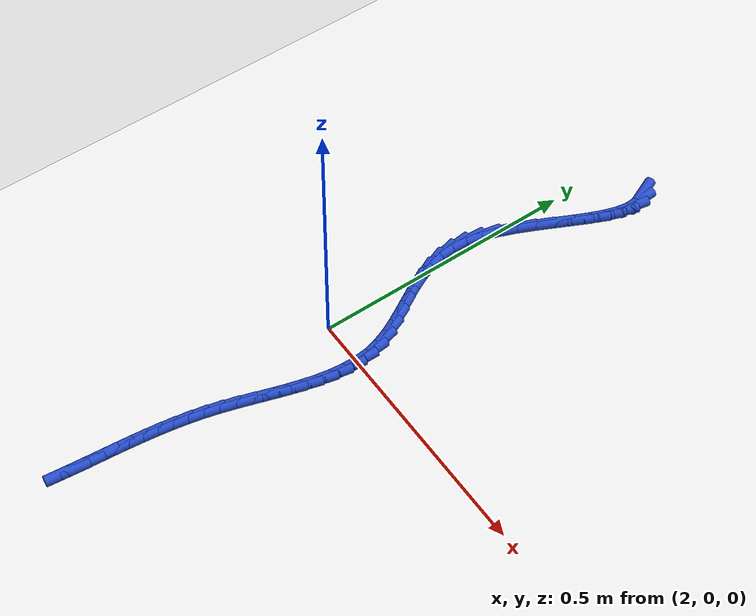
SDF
<sdf version="1.6">
 <world name="default">
  <model name="ground_plane">
   <static>1</static>
   <link name="link">
    <collision name="collision">
     <geometry><plane><normal>0 0 1</normal><size>100 100</size></plane></geometry>
     <surface><friction><ode><mu>100</mu><mu2>50</mu2></ode></friction></surface>
    </collision>
    <visual name="visual">
     <cast_shadows>0</cast_shadows>
     <geometry><plane><normal>0 0 1</normal><size>100 100</size></plane></geometry>
     <material>
      <script><uri>file://media/materials/scripts/gazebo.material</uri><name>Gazebo/WhiteGlow</name></script>
     </material>
    </visual>
   </link>
  </model>
  <model name="line">
   <link name="link_108">
    <pose>2.088530671236772 0.6298471862622399 0.01 0 1.57 -1.1535494552627963</pose>
    <collision name="collision">
     <geometry><cylinder><radius>0.01</radius><length>0.08</length></cylinder></geometry>
    </collision>
    <visual name="visual">
     <material>
      <script><name>Gazebo/Blue</name><uri>file://media/materials/scripts/gazebo.material</uri></script>
     </material>
     <geometry><cylinder><radius>0.01</radius><length>0.08</length></cylinder></geometry>
    </visual>
   </link>
   <link name="link_109">
    <pose>2.095866203141304 0.6132986744674297 0.01 0 1.57 -1.5086963709344243</pose>
    <collision name="collision">
     <geometry><cylinder><radius>0.01</radius><length>0.08</length></cylinder></geometry>
    </collision>
    <visual name="visual">
     <material>
      <script><name>Gazebo/Blue</name><uri>file://media/materials/scripts/gazebo.material</uri></script>
     </material>
     <geometry><cylinder><radius>0.01</radius><length>0.08</length></cylinder></geometry>
    </visual>
   </link>
   <link name="link_110">
    <pose>2.097097984483469 0.5934887164381072 0.01 0 1.57 1.4005457437463467</pose>
    <collision name="collision">
     <geometry><cylinder><radius>0.01</radius><length>0.08</length></cylinder></geometry>
    </collision>
    <visual name="visual">
     <material>
      <script><name>Gazebo/Blue</name><uri>file://media/materials/scripts/gazebo.material</uri></script>
     </material>
     <geometry><cylinder><radius>0.01</radius><length>0.08</length></cylinder></geometry>
    </visual>
   </link>
   <link name="link_111">
    <pose>2.093200612877301 0.5708183494552752 0.01 0 1.57 1.2607176355991938</pose>
    <collision name="collision">
     <geometry><cylinder><radius>0.01</radius><length>0.08</length></cylinder></geometry>
    </collision>
    <visual name="visual">
     <material>
      <script><name>Gazebo/Blue</name><uri>file://media/materials/scripts/gazebo.material</uri></script>
     </material>
     <geometry><cylinder><radius>0.01</radius><length>0.08</length></cylinder></geometry>
    </visual>
   </link>
   <link name="link_112">
    <pose>2.0851486859368333 0.545688610799935 0.01 0 1.57 1.1790326558956479</pose>
    <collision name="collision">
     <geometry><cylinder><radius>0.01</radius><length>0.08</length></cylinder></geometry>
    </collision>
    <visual name="visual">
     <material>
      <script><name>Gazebo/Blue</name><uri>file://media/materials/scripts/gazebo.material</uri></script>
     </material>
     <geometry><cylinder><radius>0.01</radius><length>0.08</length></cylinder></geometry>
    </visual>
   </link>
   <link name="link_113">
    <pose>2.0739168012760993 0.5185005377530887 0.01 0 1.57 1.1348505632659704</pose>
    <collision name="collision">
     <geometry><cylinder><radius>0.01</radius><length>0.08</length></cylinder></geometry>
    </collision>
    <visual name="visual">
     <material>
      <script><name>Gazebo/Blue</name><uri>file://media/materials/scripts/gazebo.material</uri></script>
     </material>
     <geometry><cylinder><radius>0.01</radius><length>0.08</length></cylinder></geometry>
    </visual>
   </link>
   <link name="link_114">
    <pose>2.060479556509134 0.4896551675957383 0.01 0 1.57 1.117374119509343</pose>
    <collision name="collision">
     <geometry><cylinder><radius>0.01</radius><length>0.08</length></cylinder></geometry>
    </collision>
    <visual name="visual">
     <material>
      <script><name>Gazebo/Blue</name><uri>file://media/materials/scripts/gazebo.material</uri></script>
     </material>
     <geometry><cylinder><radius>0.01</radius><length>0.08</length></cylinder></geometry>
    </visual>
   </link>
   <link name="link_115">
    <pose>2.045811549249971 0.4595535376088851 0.01 0 1.57 1.1215743032904808</pose>
    <collision name="collision">
     <geometry><cylinder><radius>0.01</radius><length>0.08</length></cylinder></geometry>
    </collision>
    <visual name="visual">
     <material>
      <script><name>Gazebo/Blue</name><uri>file://media/materials/scripts/gazebo.material</uri></script>
     </material>
     <geometry><cylinder><radius>0.01</radius><length>0.08</length></cylinder></geometry>
    </visual>
   </link>
   <link name="link_116">
    <pose>2.030887377112643 0.4285966850735319 0.01 0 1.57 1.1460702967075056</pose>
    <collision name="collision">
     <geometry><cylinder><radius>0.01</radius><length>0.08</length></cylinder></geometry>
    </collision>
    <visual name="visual">
     <material>
      <script><name>Gazebo/Blue</name><uri>file://media/materials/scripts/gazebo.material</uri></script>
     </material>
     <geometry><cylinder><radius>0.01</radius><length>0.08</length></cylinder></geometry>
    </visual>
   </link>
   <link name="link_117">
    <pose>2.0166816377111862 0.39718564727068023 0.01 0 1.57 1.1922906798317183</pose>
    <collision name="collision">
     <geometry><cylinder><radius>0.01</radius><length>0.08</length></cylinder></geometry>
    </collision>
    <visual name="visual">
     <material>
      <script><name>Gazebo/Blue</name><uri>file://media/materials/scripts/gazebo.material</uri></script>
     </material>
     <geometry><cylinder><radius>0.01</radius><length>0.08</length></cylinder></geometry>
    </visual>
   </link>
   <link name="link_118">
    <pose>2.0041689286596323 0.36572146148133167 0.01 0 1.57 1.2643657521343818</pose>
    <collision name="collision">
     <geometry><cylinder><radius>0.01</radius><length>0.08</length></cylinder></geometry>
    </collision>
    <visual name="visual">
     <material>
      <script><name>Gazebo/Blue</name><uri>file://media/materials/scripts/gazebo.material</uri></script>
     </material>
     <geometry><cylinder><radius>0.01</radius><length>0.08</length></cylinder></geometry>
    </visual>
   </link>
   <link name="link_119">
    <pose>1.9943238475720158 0.3346051649864888 0.01 0 1.57 1.3693074663694043</pose>
    <collision name="collision">
     <geometry><cylinder><radius>0.01</radius><length>0.08</length></cylinder></geometry>
    </collision>
    <visual name="visual">
     <material>
      <script><name>Gazebo/Blue</name><uri>file://media/materials/scripts/gazebo.material</uri></script>
     </material>
     <geometry><cylinder><radius>0.01</radius><length>0.08</length></cylinder></geometry>
    </visual>
   </link>
   <link name="link_120">
    <pose>1.988120992062371 0.30423779506715315 0.01 0 1.57 1.5160479016386545</pose>
    <collision name="collision">
     <geometry><cylinder><radius>0.01</radius><length>0.08</length></cylinder></geometry>
    </collision>
    <visual name="visual">
     <material>
      <script><name>Gazebo/Blue</name><uri>file://media/materials/scripts/gazebo.material</uri></script>
     </material>
     <geometry><cylinder><radius>0.01</radius><length>0.08</length></cylinder></geometry>
    </visual>
   </link>
   <link name="link_121">
    <pose>1.9865195143891046 0.27501545187732146 0.01 0 1.57 -1.4560521221659186</pose>
    <collision name="collision">
     <geometry><cylinder><radius>0.01</radius><length>0.08</length></cylinder></geometry>
    </collision>
    <visual name="visual">
     <material>
      <script><name>Gazebo/Blue</name><uri>file://media/materials/scripts/gazebo.material</uri></script>
     </material>
     <geometry><cylinder><radius>0.01</radius><length>0.08</length></cylinder></geometry>
    </visual>
   </link>
   <link name="link_122">
    <pose>1.9897371026363526 0.24709722563177655 0.01 0 1.57 -1.308241435245321</pose>
    <collision name="collision">
     <geometry><cylinder><radius>0.01</radius><length>0.08</length></cylinder></geometry>
    </collision>
    <visual name="visual">
     <material>
      <script><name>Gazebo/Blue</name><uri>file://media/materials/scripts/gazebo.material</uri></script>
     </material>
     <geometry><cylinder><radius>0.01</radius><length>0.08</length></cylinder></geometry>
    </visual>
   </link>
   <link name="link_123">
    <pose>1.9969376596604576 0.22030536279552848 0.01 0 1.57 -1.1929749097223121</pose>
    <collision name="collision">
     <geometry><cylinder><radius>0.01</radius><length>0.08</length></cylinder></geometry>
    </collision>
    <visual name="visual">
     <material>
      <script><name>Gazebo/Blue</name><uri>file://media/materials/scripts/gazebo.material</uri></script>
     </material>
     <geometry><cylinder><radius>0.01</radius><length>0.08</length></cylinder></geometry>
    </visual>
   </link>
   <link name="link_124">
    <pose>2.0072047491188494 0.1944364293094152 0.01 0 1.57 -1.1121723821426321</pose>
    <collision name="collision">
     <geometry><cylinder><radius>0.01</radius><length>0.08</length></cylinder></geometry>
    </collision>
    <visual name="visual">
     <material>
      <script><name>Gazebo/Blue</name><uri>file://media/materials/scripts/gazebo.material</uri></script>
     </material>
     <geometry><cylinder><radius>0.01</radius><length>0.08</length></cylinder></geometry>
    </visual>
   </link>
   <link name="link_125">
    <pose>2.0196219346689572 0.1692869911142734 0.01 0 1.57 -1.0647644617511234</pose>
    <collision name="collision">
     <geometry><cylinder><radius>0.01</radius><length>0.08</length></cylinder></geometry>
    </collision>
    <visual name="visual">
     <material>
      <script><name>Gazebo/Blue</name><uri>file://media/materials/scripts/gazebo.material</uri></script>
     </material>
     <geometry><cylinder><radius>0.01</radius><length>0.08</length></cylinder></geometry>
    </visual>
   </link>
   <link name="link_126">
    <pose>2.03327277996821 0.14465361415093989 0.01 0 1.57 -1.049467803209843</pose>
    <collision name="collision">
     <geometry><cylinder><radius>0.01</radius><length>0.08</length></cylinder></geometry>
    </collision>
    <visual name="visual">
     <material>
      <script><name>Gazebo/Blue</name><uri>file://media/materials/scripts/gazebo.material</uri></script>
     </material>
     <geometry><cylinder><radius>0.01</radius><length>0.08</length></cylinder></geometry>
    </visual>
   </link>
   <link name="link_127">
    <pose>2.047240848674039 0.12033286436025259 0.01 0 1.57 -1.0662898653865351</pose>
    <collision name="collision">
     <geometry><cylinder><radius>0.01</radius><length>0.08</length></cylinder></geometry>
    </collision>
    <visual name="visual">
     <material>
      <script><name>Gazebo/Blue</name><uri>file://media/materials/scripts/gazebo.material</uri></script>
     </material>
     <geometry><cylinder><radius>0.01</radius><length>0.08</length></cylinder></geometry>
    </visual>
   </link>
   <link name="link_128">
    <pose>2.0606097044438707 0.09612130768304822 0.01 0 1.57 -1.1170613444979636</pose>
    <collision name="collision">
     <geometry><cylinder><radius>0.01</radius><length>0.08</length></cylinder></geometry>
    </collision>
    <visual name="visual">
     <material>
      <script><name>Gazebo/Blue</name><uri>file://media/materials/scripts/gazebo.material</uri></script>
     </material>
     <geometry><cylinder><radius>0.01</radius><length>0.08</length></cylinder></geometry>
    </visual>
   </link>
   <link name="link_129">
    <pose>2.072462910935138 0.071815510060164 0.01 0 1.57 -1.2051016872098912</pose>
    <collision name="collision">
     <geometry><cylinder><radius>0.01</radius><length>0.08</length></cylinder></geometry>
    </collision>
    <visual name="visual">
     <material>
      <script><name>Gazebo/Blue</name><uri>file://media/materials/scripts/gazebo.material</uri></script>
     </material>
     <geometry><cylinder><radius>0.01</radius><length>0.08</length></cylinder></geometry>
    </visual>
   </link>
   <link name="link_130">
    <pose>2.0818840318052674 0.04721203743243704 0.01 0 1.57 -1.33162461556266</pose>
    <collision name="collision">
     <geometry><cylinder><radius>0.01</radius><length>0.08</length></cylinder></geometry>
    </collision>
    <visual name="visual">
     <material>
      <script><name>Gazebo/Blue</name><uri>file://media/materials/scripts/gazebo.material</uri></script>
     </material>
     <geometry><cylinder><radius>0.01</radius><length>0.08</length></cylinder></geometry>
    </visual>
   </link>
   <link name="link_131">
    <pose>2.088003263288894 0.022116659862207972 0.01 0 1.57 -1.466753814835802</pose>
    <collision name="collision">
     <geometry><cylinder><radius>0.01</radius><length>0.08</length></cylinder></geometry>
    </collision>
    <visual name="visual">
     <material>
      <script><name>Gazebo/Blue</name><uri>file://media/materials/scripts/gazebo.material</uri></script>
     </material>
     <geometry><cylinder><radius>0.01</radius><length>0.08</length></cylinder></geometry>
    </visual>
   </link>
   <link name="link_132">
    <pose>2.0906803221500603 -0.0035208632143480943 0.01 0 1.57 1.5582715600648647</pose>
    <collision name="collision">
     <geometry><cylinder><radius>0.01</radius><length>0.08</length></cylinder></geometry>
    </collision>
    <visual name="visual">
     <material>
      <script><name>Gazebo/Blue</name><uri>file://media/materials/scripts/gazebo.material</uri></script>
     </material>
     <geometry><cylinder><radius>0.01</radius><length>0.08</length></cylinder></geometry>
    </visual>
   </link>
   <link name="link_133">
    <pose>2.090353211121199 -0.029636632962466845 0.01 0 1.57 1.4627478954460775</pose>
    <collision name="collision">
     <geometry><cylinder><radius>0.01</radius><length>0.08</length></cylinder></geometry>
    </collision>
    <visual name="visual">
     <material>
      <script><name>Gazebo/Blue</name><uri>file://media/materials/scripts/gazebo.material</uri></script>
     </material>
     <geometry><cylinder><radius>0.01</radius><length>0.08</length></cylinder></geometry>
    </visual>
   </link>
   <link name="link_134">
    <pose>2.0874758059297793 -0.056163617609343346 0.01 0 1.57 1.387768934010715</pose>
    <collision name="collision">
     <geometry><cylinder><radius>0.01</radius><length>0.08</length></cylinder></geometry>
    </collision>
    <visual name="visual">
     <material>
      <script><name>Gazebo/Blue</name><uri>file://media/materials/scripts/gazebo.material</uri></script>
     </material>
     <geometry><cylinder><radius>0.01</radius><length>0.08</length></cylinder></geometry>
    </visual>
   </link>
   <link name="link_135">
    <pose>2.0825019823032727 -0.0830347853821749 0.01 0 1.57 1.3317446483944952</pose>
    <collision name="collision">
     <geometry><cylinder><radius>0.01</radius><length>0.08</length></cylinder></geometry>
    </collision>
    <visual name="visual">
     <material>
      <script><name>Gazebo/Blue</name><uri>file://media/materials/scripts/gazebo.material</uri></script>
     </material>
     <geometry><cylinder><radius>0.01</radius><length>0.08</length></cylinder></geometry>
    </visual>
   </link>
   <link name="link_136">
    <pose>2.075885615969148 -0.11018310450815814 0.01 0 1.57 1.292890857382724</pose>
    <collision name="collision">
     <geometry><cylinder><radius>0.01</radius><length>0.08</length></cylinder></geometry>
    </collision>
    <visual name="visual">
     <material>
      <script><name>Gazebo/Blue</name><uri>file://media/materials/scripts/gazebo.material</uri></script>
     </material>
     <geometry><cylinder><radius>0.01</radius><length>0.08</length></cylinder></geometry>
    </visual>
   </link>
   <link name="link_137">
    <pose>2.068080582654876 -0.1375415432144896 0.01 0 1.57 1.2697146407177258</pose>
    <collision name="collision">
     <geometry><cylinder><radius>0.01</radius><length>0.08</length></cylinder></geometry>
    </collision>
    <visual name="visual">
     <material>
      <script><name>Gazebo/Blue</name><uri>file://media/materials/scripts/gazebo.material</uri></script>
     </material>
     <geometry><cylinder><radius>0.01</radius><length>0.08</length></cylinder></geometry>
    </visual>
   </link>
   <link name="link_138">
    <pose>2.0595407580879264 -0.1650430697283658 0.01 0 1.57 1.2612277998145538</pose>
    <collision name="collision">
     <geometry><cylinder><radius>0.01</radius><length>0.08</length></cylinder></geometry>
    </collision>
    <visual name="visual">
     <material>
      <script><name>Gazebo/Blue</name><uri>file://media/materials/scripts/gazebo.material</uri></script>
     </material>
     <geometry><cylinder><radius>0.01</radius><length>0.08</length></cylinder></geometry>
    </visual>
   </link>
   <link name="link_139">
    <pose>2.05072001799577 -0.19262065227698338 0.01 0 1.57 1.2670211939470757</pose>
    <collision name="collision">
     <geometry><cylinder><radius>0.01</radius><length>0.08</length></cylinder></geometry>
    </collision>
    <visual name="visual">
     <material>
      <script><name>Gazebo/Blue</name><uri>file://media/materials/scripts/gazebo.material</uri></script>
     </material>
     <geometry><cylinder><radius>0.01</radius><length>0.08</length></cylinder></geometry>
    </visual>
   </link>
   <link name="link_140">
    <pose>2.0420722381058756 -0.22020725908753974 0.01 0 1.57 1.2872777909090192</pose>
    <collision name="collision">
     <geometry><cylinder><radius>0.01</radius><length>0.08</length></cylinder></geometry>
    </collision>
    <visual name="visual">
     <material>
      <script><name>Gazebo/Blue</name><uri>file://media/materials/scripts/gazebo.material</uri></script>
     </material>
     <geometry><cylinder><radius>0.01</radius><length>0.08</length></cylinder></geometry>
    </visual>
   </link>
   <link name="link_141">
    <pose>2.034051294145714 -0.24773585838722975 0.01 0 1.57 1.3217633104811566</pose>
    <collision name="collision">
     <geometry><cylinder><radius>0.01</radius><length>0.08</length></cylinder></geometry>
    </collision>
    <visual name="visual">
     <material>
      <script><name>Gazebo/Blue</name><uri>file://media/materials/scripts/gazebo.material</uri></script>
     </material>
     <geometry><cylinder><radius>0.01</radius><length>0.08</length></cylinder></geometry>
    </visual>
   </link>
   <link name="link_142">
    <pose>2.0270811594337395 -0.275143651759333 0.01 0 1.57 1.3596173518885084</pose>
    <collision name="collision">
     <geometry><cylinder><radius>0.01</radius><length>0.08</length></cylinder></geometry>
    </collision>
    <visual name="visual">
     <material>
      <script><name>Gazebo/Blue</name><uri>file://media/materials/scripts/gazebo.material</uri></script>
     </material>
     <geometry><cylinder><radius>0.01</radius><length>0.08</length></cylinder></geometry>
    </visual>
   </link>
   <link name="link_143">
    <pose>2.0212342978314357 -0.3024176048277693 0.01 0 1.57 1.3930219907149048</pose>
    <collision name="collision">
     <geometry><cylinder><radius>0.01</radius><length>0.08</length></cylinder></geometry>
    </collision>
    <visual name="visual">
     <material>
      <script><name>Gazebo/Blue</name><uri>file://media/materials/scripts/gazebo.material</uri></script>
     </material>
     <geometry><cylinder><radius>0.01</radius><length>0.08</length></cylinder></geometry>
    </visual>
   </link>
   <link name="link_144">
    <pose>2.0163545301074985 -0.3295770527699266 0.01 0 1.57 1.4214357884696307</pose>
    <collision name="collision">
     <geometry><cylinder><radius>0.01</radius><length>0.08</length></cylinder></geometry>
    </collision>
    <visual name="visual">
     <material>
      <script><name>Gazebo/Blue</name><uri>file://media/materials/scripts/gazebo.material</uri></script>
     </material>
     <geometry><cylinder><radius>0.01</radius><length>0.08</length></cylinder></geometry>
    </visual>
   </link>
   <link name="link_145">
    <pose>2.012281781740606 -0.3566418822287851 0.01 0 1.57 1.4445432852288151</pose>
    <collision name="collision">
     <geometry><cylinder><radius>0.01</radius><length>0.08</length></cylinder></geometry>
    </collision>
    <visual name="visual">
     <material>
      <script><name>Gazebo/Blue</name><uri>file://media/materials/scripts/gazebo.material</uri></script>
     </material>
     <geometry><cylinder><radius>0.01</radius><length>0.08</length></cylinder></geometry>
    </visual>
   </link>
   <link name="link_146">
    <pose>2.0088559782094353 -0.38363197984732456 0.01 0 1.57 1.462115223726965</pose>
    <collision name="collision">
     <geometry><cylinder><radius>0.01</radius><length>0.08</length></cylinder></geometry>
    </collision>
    <visual name="visual">
     <material>
      <script><name>Gazebo/Blue</name><uri>file://media/materials/scripts/gazebo.material</uri></script>
     </material>
     <geometry><cylinder><radius>0.01</radius><length>0.08</length></cylinder></geometry>
    </visual>
   </link>
   <link name="link_147">
    <pose>2.005917044992663 -0.41056723226852504 0.01 0 1.57 1.4739953998580437</pose>
    <collision name="collision">
     <geometry><cylinder><radius>0.01</radius><length>0.08</length></cylinder></geometry>
    </collision>
    <visual name="visual">
     <material>
      <script><name>Gazebo/Blue</name><uri>file://media/materials/scripts/gazebo.material</uri></script>
     </material>
     <geometry><cylinder><radius>0.01</radius><length>0.08</length></cylinder></geometry>
    </visual>
   </link>
   <link name="link_148">
    <pose>2.0033049075689675 -0.4374675261353665 0.01 0 1.57 1.4800882955928145</pose>
    <collision name="collision">
     <geometry><cylinder><radius>0.01</radius><length>0.08</length></cylinder></geometry>
    </collision>
    <visual name="visual">
     <material>
      <script><name>Gazebo/Blue</name><uri>file://media/materials/scripts/gazebo.material</uri></script>
     </material>
     <geometry><cylinder><radius>0.01</radius><length>0.08</length></cylinder></geometry>
    </visual>
   </link>
   <link name="link_149">
    <pose>2.0008594914170246 -0.46435274809082977 0.01 0 1.57 1.480349608778248</pose>
    <collision name="collision">
     <geometry><cylinder><radius>0.01</radius><length>0.08</length></cylinder></geometry>
    </collision>
    <visual name="visual">
     <material>
      <script><name>Gazebo/Blue</name><uri>file://media/materials/scripts/gazebo.material</uri></script>
     </material>
     <geometry><cylinder><radius>0.01</radius><length>0.08</length></cylinder></geometry>
    </visual>
   </link>
   <link name="link_150">
    <pose>1.998420722015513 -0.4912427847778933 0.01 0 1.57 1.47478103215782</pose>
    <collision name="collision">
     <geometry><cylinder><radius>0.01</radius><length>0.08</length></cylinder></geometry>
    </collision>
    <visual name="visual">
     <material>
      <script><name>Gazebo/Blue</name><uri>file://media/materials/scripts/gazebo.material</uri></script>
     </material>
     <geometry><cylinder><radius>0.01</radius><length>0.08</length></cylinder></geometry>
    </visual>
   </link>
   <link name="link_151">
    <pose>1.9958285248431096 -0.5181575228395376 0.01 0 1.57 1.4634299306785925</pose>
    <collision name="collision">
     <geometry><cylinder><radius>0.01</radius><length>0.08</length></cylinder></geometry>
    </collision>
    <visual name="visual">
     <material>
      <script><name>Gazebo/Blue</name><uri>file://media/materials/scripts/gazebo.material</uri></script>
     </material>
     <geometry><cylinder><radius>0.01</radius><length>0.08</length></cylinder></geometry>
    </visual>
   </link>
  </model>
 </world>
</sdf>
